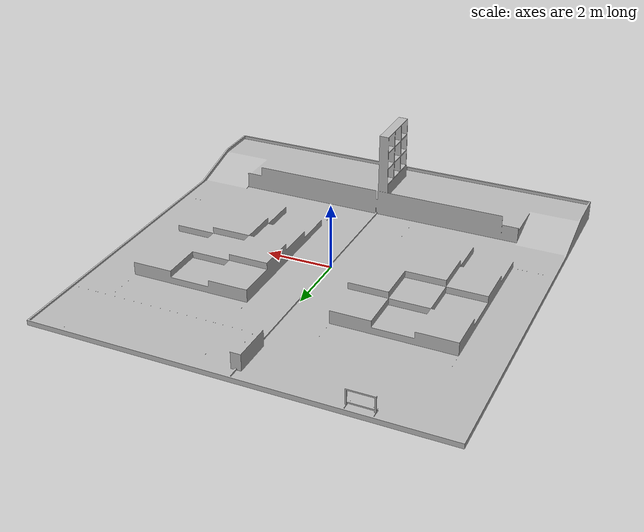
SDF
<?xml version="1.0"?>
<sdf version="1.5">
    <model name="lapangan">
      <pose>0 0 0  0 0 0</pose>
      <static>true</static>
      <link name="body">
        <visual name="visual">
          <geometry>
            <mesh>
              <uri>model://lapangan/meshes/lapangan.dae</uri>
              <scale>0.001 0.001 0.001</scale>
            </mesh>
          </geometry>
        </visual>
        <collision name="collision">
          <geometry>
            <mesh>
              <uri>model://lapangan/meshes/lapangan.dae</uri>
              <scale>0.001 0.001 0.001</scale>
            </mesh>
          </geometry>
        </collision>
      </link>
    </model>
</sdf>
